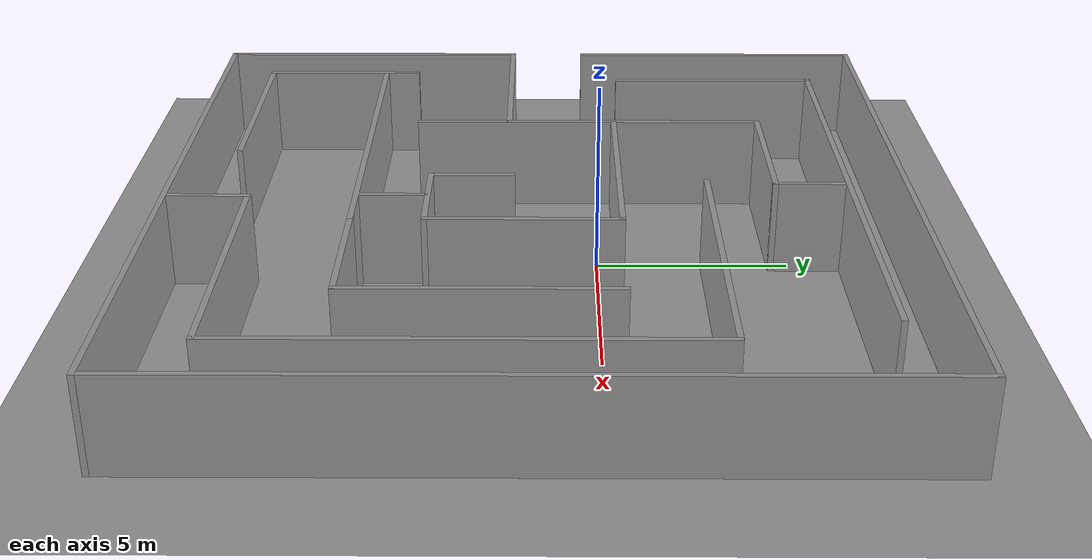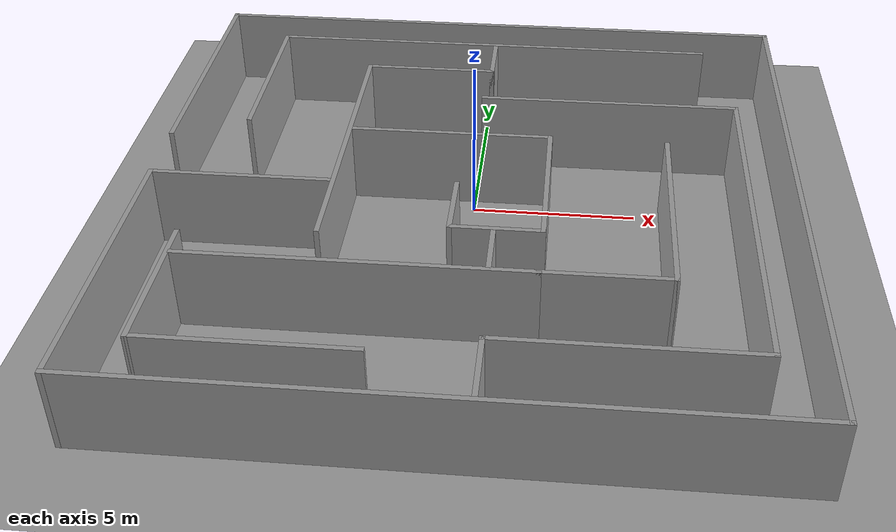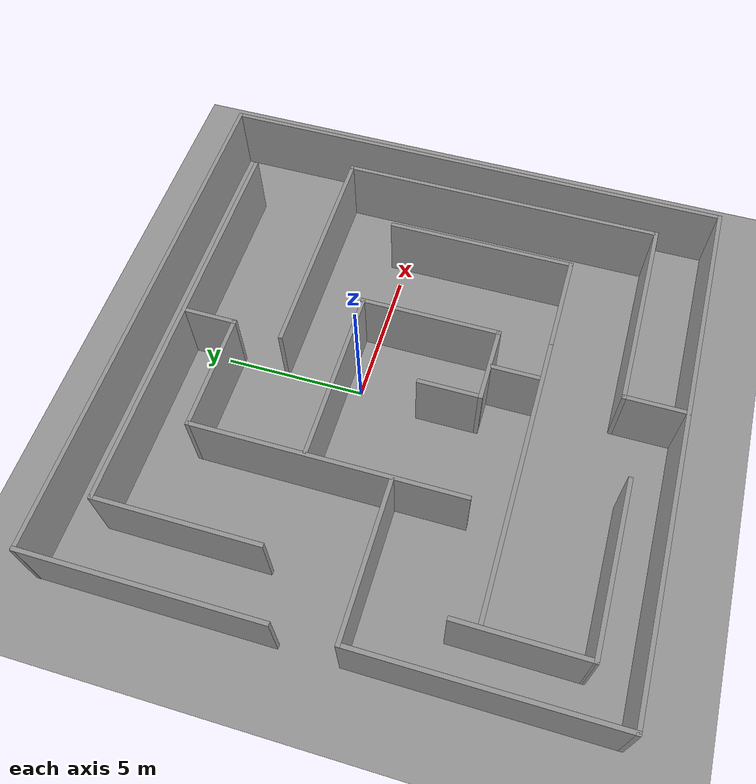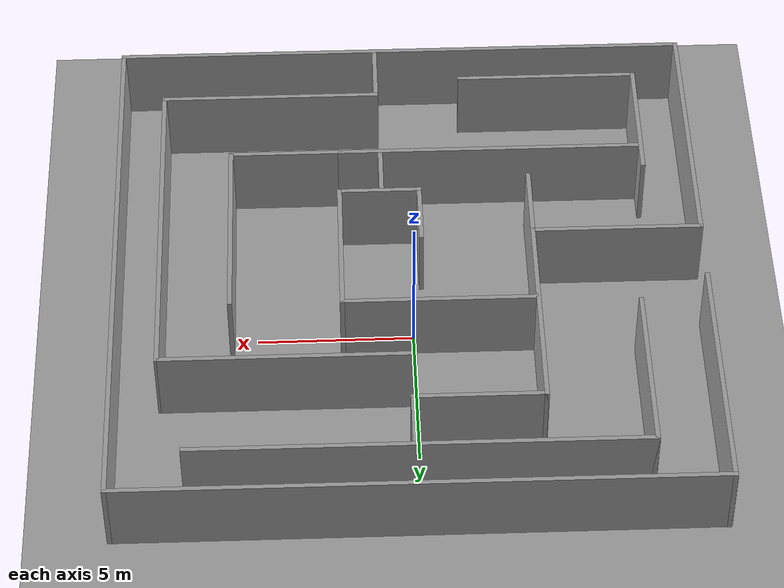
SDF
<sdf version="1.6">
 <world name="default">
  <light name="sun" type="directional">
   <pose>0 0 10 0 -0 0</pose>
   <diffuse>0.8 0.8 0.8 1</diffuse>
   <specular>0.2 0.2 0.2 1</specular>
   <attenuation>
    <range>1000</range>
    <constant>0.9</constant>
    <linear>0.01</linear>
    <quadratic>0.001</quadratic>
   </attenuation>
   <direction>0.5 0.1 -0.9</direction>
  </light>
  <scene><ambient>0.4 0.4 0.4 1</ambient><background>0.7 0.7 0.7 1</background><shadows>1</shadows></scene>
  <physics name="default_physics" default="0" type="ode">
   <max_step_size>0.01</max_step_size>
   <real_time_factor>1</real_time_factor>
   <real_time_update_rate>100</real_time_update_rate>
  </physics>
  <model name="ground_plane_0">
   <static>1</static>
   <link name="link">
    <collision name="collision">
     <geometry><plane><normal>0 0 1</normal><size>100 100</size></plane></geometry>
     <surface><friction><ode><mu>100</mu><mu2>50</mu2></ode></friction></surface>
    </collision>
    <visual name="visual">
     <cast_shadows>0</cast_shadows>
     <geometry><plane><normal>0 0 1</normal><size>100 100</size></plane></geometry>
     <material>
      <script><uri>file://media/materials/scripts/gazebo.material</uri><name>Gazebo/Grey</name></script>
     </material>
    </visual>
    <velocity_decay><linear>0</linear><angular>0</angular></velocity_decay>
   </link>
   <pose>0.497681 0 0 0 -0 0</pose>
  </model>
  <gravity>0 0 -9.8</gravity>
  <magnetic_field>6e-06 2.3e-05 -4.2e-05</magnetic_field>
  <atmosphere type="adiabatic"/>
  <spherical_coordinates>
   <surface_model>EARTH_WGS84</surface_model>
   <latitude_deg>0</latitude_deg>
   <longitude_deg>0</longitude_deg>
   <elevation>0</elevation>
   <heading_deg>0</heading_deg>
  </spherical_coordinates>
  <model name="Untitled">
   <pose>0.085971 -1.52073 0 0 -0 0</pose>
   <link name="Wall_15">
    <collision name="Wall_15_Collision">
     <geometry><box><size>11.75 0.15 2.5</size></box></geometry>
     <pose>0 0 1.25 0 -0 0</pose>
    </collision>
    <visual name="Wall_15_Visual">
     <pose>0 0 1.25 0 -0 0</pose>
     <geometry><box><size>11.75 0.15 2.5</size></box></geometry>
     <material>
      <script><uri>file://media/materials/scripts/gazebo.material</uri><name>Gazebo/Grey</name></script>
      <ambient>1 1 1 1</ambient>
     </material>
     <meta><layer>0</layer></meta>
    </visual>
    <pose>7.99024 -1.49834 0 0 -0 1.5708</pose>
   </link>
   <link name="Wall_17">
    <collision name="Wall_17_Collision">
     <geometry><box><size>8.07609 0.15 2.5</size></box></geometry>
     <pose>0 0 1.25 0 -0 0</pose>
    </collision>
    <visual name="Wall_17_Visual">
     <pose>0 0 1.25 0 -0 0</pose>
     <geometry><box><size>8.07609 0.15 2.5</size></box></geometry>
     <material>
      <script><uri>file://media/materials/scripts/gazebo.material</uri><name>Gazebo/Grey</name></script>
      <ambient>1 1 1 1</ambient>
     </material>
     <meta><layer>0</layer></meta>
    </visual>
    <pose>3.94664 4.31117 0 0 -0 3.14159</pose>
   </link>
   <link name="Wall_25">
    <collision name="Wall_25_Collision">
     <geometry><box><size>5.5 0.15 2.5</size></box></geometry>
     <pose>0 0 1.25 0 -0 0</pose>
    </collision>
    <visual name="Wall_25_Visual">
     <pose>0 0 1.25 0 -0 0</pose>
     <geometry><box><size>5.5 0.15 2.5</size></box></geometry>
     <material>
      <script><uri>file://media/materials/scripts/gazebo.material</uri><name>Gazebo/Grey</name></script>
      <ambient>1 1 1 1</ambient>
     </material>
     <meta><layer>0</layer></meta>
    </visual>
    <pose>-6.75 -0.827975 0 0 -0 0</pose>
   </link>
   <link name="Wall_27">
    <collision name="Wall_27_Collision">
     <geometry><box><size>9.5 0.15 2.5</size></box></geometry>
     <pose>0 0 1.25 0 -0 0</pose>
    </collision>
    <visual name="Wall_27_Visual">
     <pose>0 0 1.25 0 -0 0</pose>
     <geometry><box><size>9.5 0.15 2.5</size></box></geometry>
     <material>
      <script><uri>file://media/materials/scripts/gazebo.material</uri><name>Gazebo/Grey</name></script>
      <ambient>1 1 1 1</ambient>
     </material>
     <meta><layer>0</layer></meta>
    </visual>
    <pose>-3.99992 1.38174 0 0 0 -1.5708</pose>
   </link>
   <link name="Wall_29">
    <collision name="Wall_29_Collision">
     <geometry><box><size>5.75 0.15 2.5</size></box></geometry>
     <pose>0 0 1.25 0 -0 0</pose>
    </collision>
    <visual name="Wall_29_Visual">
     <pose>0 0 1.25 0 -0 0</pose>
     <geometry><box><size>5.75 0.15 2.5</size></box></geometry>
     <material>
      <script><uri>file://media/materials/scripts/gazebo.material</uri><name>Gazebo/Grey</name></script>
      <ambient>1 1 1 1</ambient>
     </material>
     <meta><layer>0</layer></meta>
    </visual>
    <pose>-7.22861 5.12355 0 0 -0 1.5708</pose>
   </link>
   <link name="Wall_30">
    <collision name="Wall_30_Collision">
     <geometry><box><size>14.5 0.15 2.5</size></box></geometry>
     <pose>0 0 1.25 0 -0 0</pose>
    </collision>
    <visual name="Wall_30_Visual">
     <pose>0 0 1.25 0 -0 0</pose>
     <geometry><box><size>14.5 0.15 2.5</size></box></geometry>
     <material>
      <script><uri>file://media/materials/scripts/gazebo.material</uri><name>Gazebo/Grey</name></script>
      <ambient>1 1 1 1</ambient>
     </material>
     <meta><layer>0</layer></meta>
    </visual>
    <pose>-0.053613 7.92355 0 0 -0 0</pose>
   </link>
   <link name="Wall_32">
    <collision name="Wall_32_Collision">
     <geometry><box><size>4.25 0.15 2.5</size></box></geometry>
     <pose>0 0 1.25 0 -0 0</pose>
    </collision>
    <visual name="Wall_32_Visual">
     <pose>0 0 1.25 0 -0 0</pose>
     <geometry><box><size>4.25 0.15 2.5</size></box></geometry>
     <material>
      <script><uri>file://media/materials/scripts/gazebo.material</uri><name>Gazebo/Grey</name></script>
      <ambient>1 1 1 1</ambient>
     </material>
     <meta><layer>0</layer></meta>
    </visual>
    <pose>-1.94992 6.05674 0 0 -0 0</pose>
   </link>
   <link name="Wall_33">
    <collision name="Wall_33_Collision">
     <geometry><box><size>2 0.15 2.5</size></box></geometry>
     <pose>0 0 1.25 0 -0 0</pose>
    </collision>
    <visual name="Wall_33_Visual">
     <pose>0 0 1.25 0 -0 0</pose>
     <geometry><box><size>2 0.15 2.5</size></box></geometry>
     <material>
      <script><uri>file://media/materials/scripts/gazebo.material</uri><name>Gazebo/Grey</name></script>
      <ambient>1 1 1 1</ambient>
     </material>
     <meta><layer>0</layer></meta>
    </visual>
    <pose>0.100076 6.98174 0 0 -0 1.5708</pose>
   </link>
   <link name="Wall_35">
    <collision name="Wall_35_Collision">
     <geometry><box><size>7.25 0.15 2.5</size></box></geometry>
     <pose>0 0 1.25 0 -0 0</pose>
    </collision>
    <visual name="Wall_35_Visual">
     <pose>0 0 1.25 0 -0 0</pose>
     <geometry><box><size>7.25 0.15 2.5</size></box></geometry>
     <material>
      <script><uri>file://media/materials/scripts/gazebo.material</uri><name>Gazebo/Grey</name></script>
      <ambient>1 1 1 1</ambient>
     </material>
     <meta><layer>0</layer></meta>
    </visual>
    <pose>4.44024 -7.29834 0 0 -0 3.14159</pose>
   </link>
   <link name="Wall_36">
    <collision name="Wall_36_Collision">
     <geometry><box><size>2.25 0.15 2.5</size></box></geometry>
     <pose>0 0 1.25 0 -0 0</pose>
    </collision>
    <visual name="Wall_36_Visual">
     <pose>0 0 1.25 0 -0 0</pose>
     <geometry><box><size>2.25 0.15 2.5</size></box></geometry>
     <material>
      <script><uri>file://media/materials/scripts/gazebo.material</uri><name>Gazebo/Grey</name></script>
      <ambient>1 1 1 1</ambient>
     </material>
     <meta><layer>0</layer></meta>
    </visual>
    <pose>0.890238 -8.34834 0 0 0 -1.5708</pose>
   </link>
   <link name="Wall_39">
    <collision name="Wall_39_Collision">
     <geometry><box><size>6.25 0.15 2.5</size></box></geometry>
     <pose>0 0 1.25 0 -0 0</pose>
    </collision>
    <visual name="Wall_39_Visual">
     <pose>0 0 1.25 0 -0 0</pose>
     <geometry><box><size>6.25 0.15 2.5</size></box></geometry>
     <material>
      <script><uri>file://media/materials/scripts/gazebo.material</uri><name>Gazebo/Grey</name></script>
      <ambient>1 1 1 1</ambient>
     </material>
     <meta><layer>0</layer></meta>
    </visual>
    <pose>-0.854086 2.06685 0 0 -0 0</pose>
   </link>
   <link name="Wall_4">
    <collision name="Wall_4_Collision">
     <geometry><box><size>19 0.15 2.5</size></box></geometry>
     <pose>0 0 1.25 0 -0 0</pose>
    </collision>
    <visual name="Wall_4_Visual">
     <pose>0 0 1.25 0 -0 0</pose>
     <geometry><box><size>19 0.15 2.5</size></box></geometry>
     <material>
      <script><uri>file://media/materials/scripts/gazebo.material</uri><name>Gazebo/Grey</name></script>
      <ambient>1 1 1 1</ambient>
     </material>
     <meta><layer>0</layer></meta>
    </visual>
    <pose>0 9.42202 0 0 -0 0</pose>
   </link>
   <link name="Wall_40">
    <collision name="Wall_40_Collision">
     <geometry><box><size>5 0.15 2.5</size></box></geometry>
     <pose>0 0 1.25 0 -0 0</pose>
    </collision>
    <visual name="Wall_40_Visual">
     <pose>0 0 1.25 0 -0 0</pose>
     <geometry><box><size>5 0.15 2.5</size></box></geometry>
     <material>
      <script><uri>file://media/materials/scripts/gazebo.material</uri><name>Gazebo/Grey</name></script>
      <ambient>1 1 1 1</ambient>
     </material>
     <meta><layer>0</layer></meta>
    </visual>
    <pose>2.19591 -0.358147 0 0 0 -1.5708</pose>
   </link>
   <link name="Wall_41">
    <collision name="Wall_41_Collision">
     <geometry><box><size>2.75 0.15 2.5</size></box></geometry>
     <pose>0 0 1.25 0 -0 0</pose>
    </collision>
    <visual name="Wall_41_Visual">
     <pose>0 0 1.25 0 -0 0</pose>
     <geometry><box><size>2.75 0.15 2.5</size></box></geometry>
     <material>
      <script><uri>file://media/materials/scripts/gazebo.material</uri><name>Gazebo/Grey</name></script>
      <ambient>1 1 1 1</ambient>
     </material>
     <meta><layer>0</layer></meta>
    </visual>
    <pose>0.895914 -2.78315 0 0 -0 3.14159</pose>
   </link>
   <link name="Wall_42">
    <collision name="Wall_42_Collision">
     <geometry><box><size>2.25 0.15 2.5</size></box></geometry>
     <pose>0 0 1.25 0 -0 0</pose>
    </collision>
    <visual name="Wall_42_Visual">
     <pose>0 0 1.25 0 -0 0</pose>
     <geometry><box><size>2.25 0.15 2.5</size></box></geometry>
     <material>
      <script><uri>file://media/materials/scripts/gazebo.material</uri><name>Gazebo/Grey</name></script>
      <ambient>1 1 1 1</ambient>
     </material>
     <meta><layer>0</layer></meta>
    </visual>
    <pose>-0.404086 -1.73315 0 0 -0 1.5708</pose>
   </link>
   <link name="Wall_44">
    <collision name="Wall_44_Collision">
     <geometry><box><size>4.44454 0.15 2.5</size></box></geometry>
     <pose>0 0 1.25 0 -0 0</pose>
    </collision>
    <visual name="Wall_44_Visual">
     <pose>0 0 1.25 0 -0 0</pose>
     <geometry><box><size>4.44454 0.15 2.5</size></box></geometry>
     <material>
      <script><uri>file://media/materials/scripts/gazebo.material</uri><name>Gazebo/Grey</name></script>
      <ambient>1 1 1 1</ambient>
     </material>
     <meta><layer>0</layer></meta>
    </visual>
    <pose>-7.82375 -5.83812 0 0 0 -1.57597</pose>
   </link>
   <link name="Wall_47">
    <collision name="Wall_47_Collision">
     <geometry><box><size>10 0.15 2.5</size></box></geometry>
     <pose>0 0 1.25 0 -0 0</pose>
    </collision>
    <visual name="Wall_47_Visual">
     <pose>0 0 1.25 0 -0 0</pose>
     <geometry><box><size>10 0.15 2.5</size></box></geometry>
     <material>
      <script><uri>file://media/materials/scripts/gazebo.material</uri><name>Gazebo/Grey</name></script>
      <ambient>1 1 1 1</ambient>
     </material>
     <meta><layer>0</layer></meta>
    </visual>
    <pose>-2.77993 -4.5877 0 0 -0 0</pose>
   </link>
   <link name="Wall_48">
    <collision name="Wall_48_Collision">
     <geometry><box><size>3.75 0.15 2.5</size></box></geometry>
     <pose>0 0 1.25 0 -0 0</pose>
    </collision>
    <visual name="Wall_48_Visual">
     <pose>0 0 1.25 0 -0 0</pose>
     <geometry><box><size>3.75 0.15 2.5</size></box></geometry>
     <material>
      <script><uri>file://media/materials/scripts/gazebo.material</uri><name>Gazebo/Grey</name></script>
      <ambient>1 1 1 1</ambient>
     </material>
     <meta><layer>0</layer></meta>
    </visual>
    <pose>3.94507 -4.5877 0 0 -0 0</pose>
   </link>
   <link name="Wall_49">
    <collision name="Wall_49_Collision">
     <geometry><box><size>6.75 0.15 2.5</size></box></geometry>
     <pose>0 0 1.25 0 -0 0</pose>
    </collision>
    <visual name="Wall_49_Visual">
     <pose>0 0 1.25 0 -0 0</pose>
     <geometry><box><size>6.75 0.15 2.5</size></box></geometry>
     <material>
      <script><uri>file://media/materials/scripts/gazebo.material</uri><name>Gazebo/Grey</name></script>
      <ambient>1 1 1 1</ambient>
     </material>
     <meta><layer>0</layer></meta>
    </visual>
    <pose>5.74507 -1.2877 0 0 -0 1.5708</pose>
   </link>
   <link name="Wall_5">
    <collision name="Wall_5_Collision">
     <geometry><box><size>19 0.15 2.5</size></box></geometry>
     <pose>0 0 1.25 0 -0 0</pose>
    </collision>
    <visual name="Wall_5_Visual">
     <pose>0 0 1.25 0 -0 0</pose>
     <geometry><box><size>19 0.15 2.5</size></box></geometry>
     <material>
      <script><uri>file://media/materials/scripts/gazebo.material</uri><name>Gazebo/Grey</name></script>
      <ambient>1 1 1 1</ambient>
     </material>
     <meta><layer>0</layer></meta>
    </visual>
    <pose>9.425 -0.002975 0 0 0 -1.5708</pose>
   </link>
   <link name="Wall_51">
    <collision name="Wall_51_Collision">
     <geometry><box><size>1.75 0.15 2.5</size></box></geometry>
     <pose>0 0 1.25 0 -0 0</pose>
    </collision>
    <visual name="Wall_51_Visual">
     <pose>0 0 1.25 0 -0 0</pose>
     <geometry><box><size>1.75 0.15 2.5</size></box></geometry>
     <material>
      <script><uri>file://media/materials/scripts/gazebo.material</uri><name>Gazebo/Grey</name></script>
      <ambient>1 1 1 1</ambient>
     </material>
     <meta><layer>0</layer></meta>
    </visual>
    <pose>0.820401 -3.67036 0 0 0 -1.5708</pose>
   </link>
   <link name="Wall_53">
    <collision name="Wall_53_Collision">
     <geometry><box><size>6 0.15 2.5</size></box></geometry>
     <pose>0 0 1.25 0 -0 0</pose>
    </collision>
    <visual name="Wall_53_Visual">
     <pose>0 0 1.25 0 -0 0</pose>
     <geometry><box><size>6 0.15 2.5</size></box></geometry>
     <material>
      <script><uri>file://media/materials/scripts/gazebo.material</uri><name>Gazebo/Grey</name></script>
      <ambient>1 1 1 1</ambient>
     </material>
     <meta><layer>0</layer></meta>
    </visual>
    <pose>-4.90986 -7.98536 0 0 -0 0</pose>
   </link>
   <link name="Wall_6">
    <collision name="Wall_6_Collision">
     <geometry><box><size>19 0.15 2.5</size></box></geometry>
     <pose>0 0 1.25 0 -0 0</pose>
    </collision>
    <visual name="Wall_6_Visual">
     <pose>0 0 1.25 0 -0 0</pose>
     <geometry><box><size>19 0.15 2.5</size></box></geometry>
     <material>
      <script><uri>file://media/materials/scripts/gazebo.material</uri><name>Gazebo/Grey</name></script>
      <ambient>1 1 1 1</ambient>
     </material>
     <meta><layer>0</layer></meta>
    </visual>
    <pose>0 -9.42798 0 0 -0 3.14159</pose>
   </link>
   <link name="Wall_7">
    <collision name="Wall_7_Collision">
     <geometry><box><size>8.75 0.15 2.5</size></box></geometry>
     <pose>0 0 1.25 0 -0 0</pose>
    </collision>
    <visual name="Wall_7_Visual">
     <pose>0 0 1.25 0 -0 0</pose>
     <geometry><box><size>8.75 0.15 2.5</size></box></geometry>
     <material>
      <script><uri>file://media/materials/scripts/gazebo.material</uri><name>Gazebo/Grey</name></script>
      <ambient>1 1 1 1</ambient>
     </material>
     <meta><layer>0</layer></meta>
    </visual>
    <pose>-9.425 -5.12798 0 0 -0 1.5708</pose>
   </link>
   <link name="Wall_9">
    <collision name="Wall_9_Collision">
     <geometry><box><size>8.25 0.15 2.5</size></box></geometry>
     <pose>0 0 1.25 0 -0 0</pose>
    </collision>
    <visual name="Wall_9_Visual">
     <pose>0 0 1.25 0 -0 0</pose>
     <geometry><box><size>8.25 0.15 2.5</size></box></geometry>
     <material>
      <script><uri>file://media/materials/scripts/gazebo.material</uri><name>Gazebo/Grey</name></script>
      <ambient>1 1 1 1</ambient>
     </material>
     <meta><layer>0</layer></meta>
    </visual>
    <pose>-9.41669 5.37798 0 0 0 -1.5708</pose>
   </link>
   <static>1</static>
  </model>
 </world>
</sdf>
